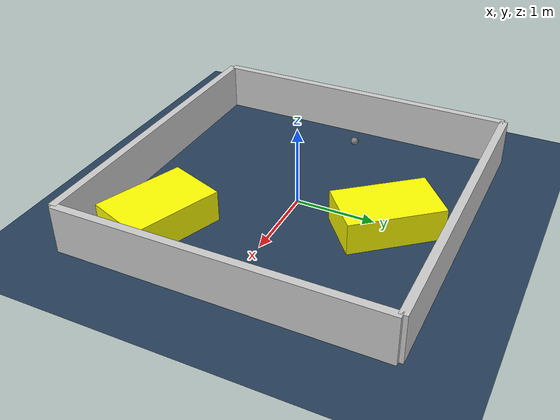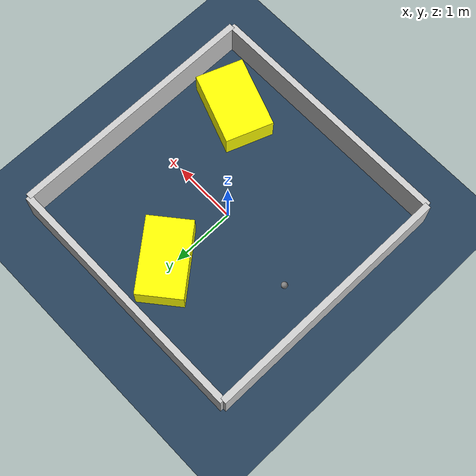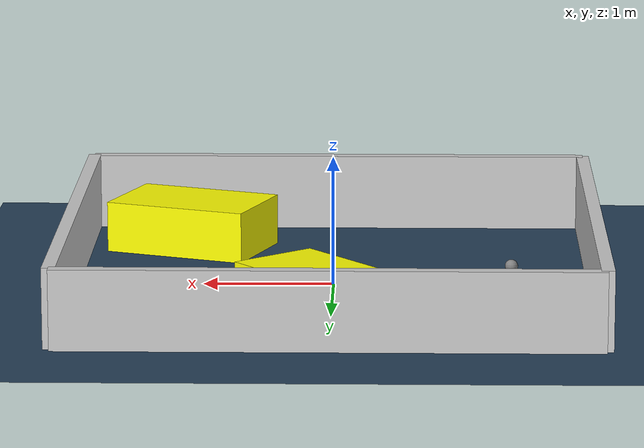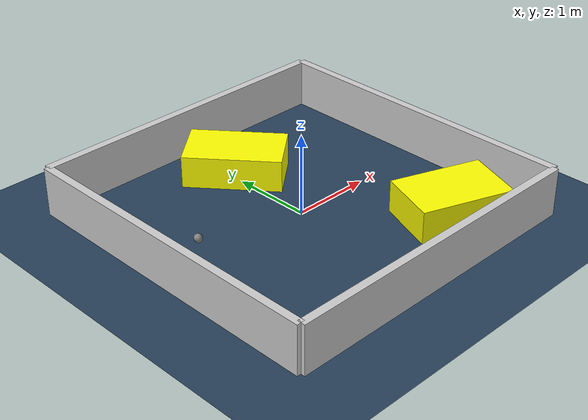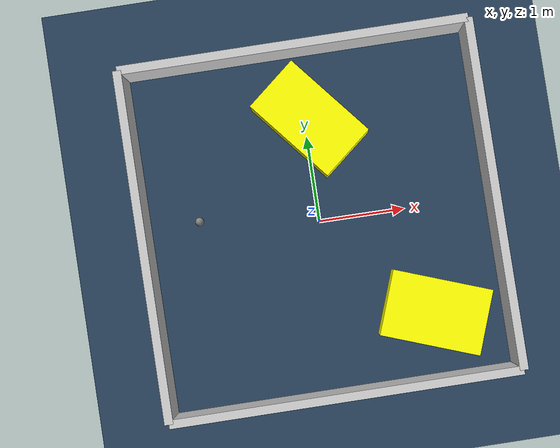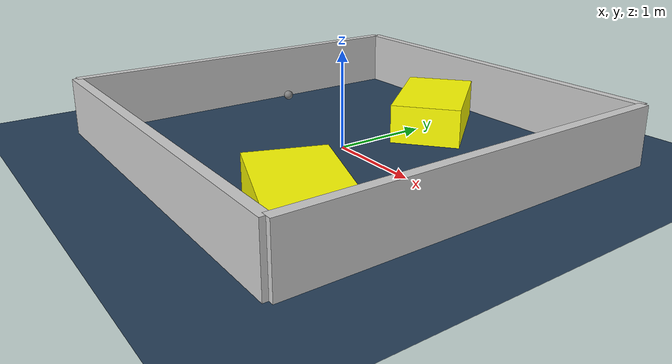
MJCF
<?xml version="1.0" ?>
<mujoco model="generated_environment">
  <option timestep="0.01" integrator="RK4" cone="elliptic"/>
  <default>
    <geom density="1"/>
  </default>
  <asset>
    <texture builtin="gradient" height="3072" rgb1="0.3 0.5 0.7" rgb2="0 0 0" type="skybox" width="512"/>
    <texture builtin="checker" height="300" mark="edge" markrgb="0.8 0.8 0.8" name="groundplane" rgb1="0.2 0.3 0.4" rgb2="0.1 0.2 0.3" type="2d" width="300"/>
    <material name="groundplane" reflectance="0.2" texrepeat="5 5" texture="groundplane" texuniform="true"/>
    <material name="robot" rgba="0.0 1.0 0.0 1"/>
  </asset>
  <worldbody>
    <light dir="0 0 -1" directional="true" pos="0 0 1.5"/>
    <geom condim="4" friction="1.0 0.005 0.001" material="groundplane" name="floor" size="0 0 0.05" type="plane"/>
    <body name="walls">
      <geom name="wall_1" condim="4" pos="-2.0 0.0 0.3" rgba="0.800000011920929 0.800000011920929 0.800000011920929 1.0" size="0.05 2.0 0.3" type="box"/>
      <geom name="wall_2" condim="4" pos="2.0 0.0 0.3" rgba="0.800000011920929 0.800000011920929 0.800000011920929 1.0" size="0.05 2.0 0.3" type="box"/>
      <geom name="wall_3" condim="4" pos="0.0 -2.0 0.3" rgba="0.800000011920929 0.800000011920929 0.800000011920929 1.0" size="2.0 0.05 0.3" type="box"/>
      <geom name="wall_4" condim="4" pos="0.0 2.0 0.3" rgba="0.800000011920929 0.800000011920929 0.800000011920929 1.0" size="2.0 0.05 0.3" type="box"/>
    </body>
    <body name="robot">
      <joint name="joint_x" type="slide" pos="0 0 0" axis="1 0 0"/>
      <joint name="joint_y" type="slide" pos="0 0 0" axis="0 1 0"/>
      <geom name="robot" type="sphere" pos="-1.3630661226249015 0.19956325121924978 0.2" size="0.05" mass="5." friction="1.0 0.005 0.0001" condim="4"/>
      <site name="sensor_ball"/>
    </body>
    <body name="obstacle_1_movable">
      <geom name="obstacle_1_movable" condim="4" pos="1.1534184226359157 -1.233809122349432 0.2" euler="0 0 249.71361783275051" friction="1.0 0.005 0.001" rgba="1 1 0 1" size="0.38016173966312494 0.5782788721917043 0.2" type="box" mass="0.1"/>
      <joint type="free"/>
    </body>
    <body name="obstacle_2_movable">
      <geom name="obstacle_2_movable" condim="4" pos="0.06318764052297898 1.1712220727145253 0.2" euler="0 0 219.52061115562495" friction="1.0 0.005 0.001" rgba="1 1 0 1" size="0.35448586848803487 0.5926356389285798 0.2" type="box" mass="0.1"/>
      <joint type="free"/>
    </body>
  </worldbody>
  <actuator>
    <motor name="actuator_x" joint="joint_x" gear="1" ctrlrange="-1 1"/>
    <motor name="actuator_y" joint="joint_y" gear="1" ctrlrange="-1 1"/>
  </actuator>
</mujoco>
